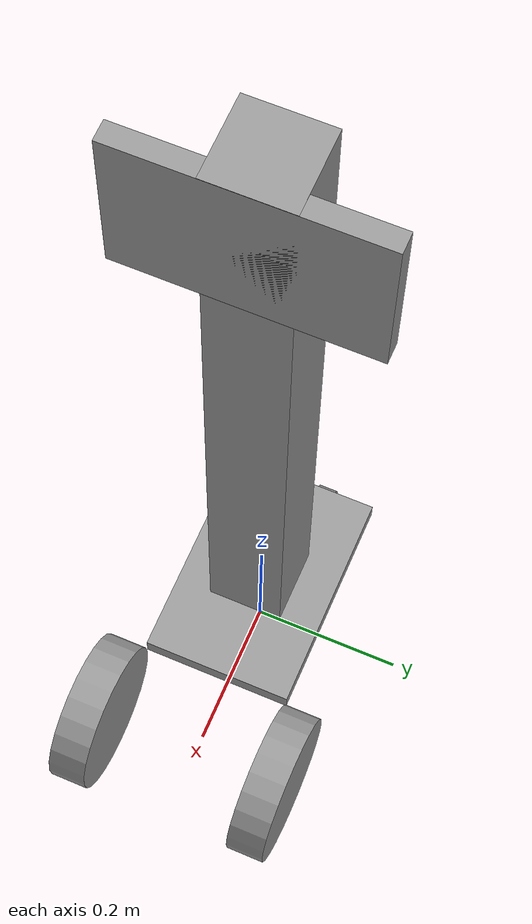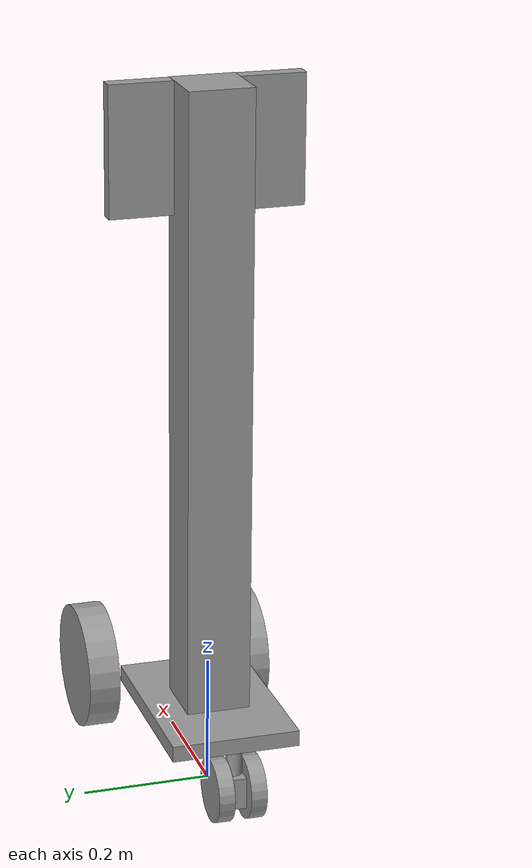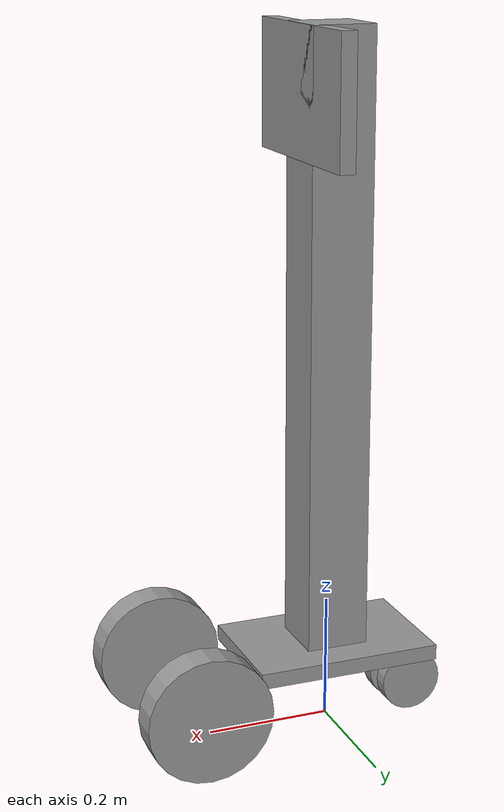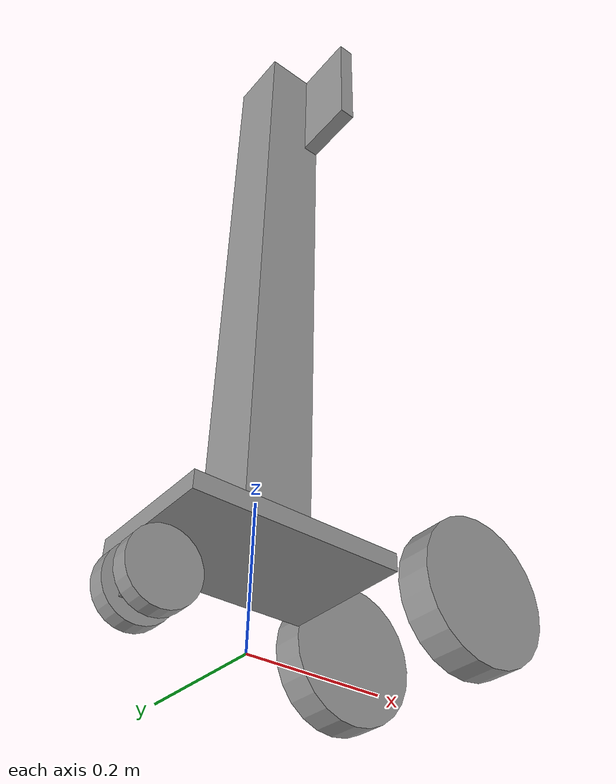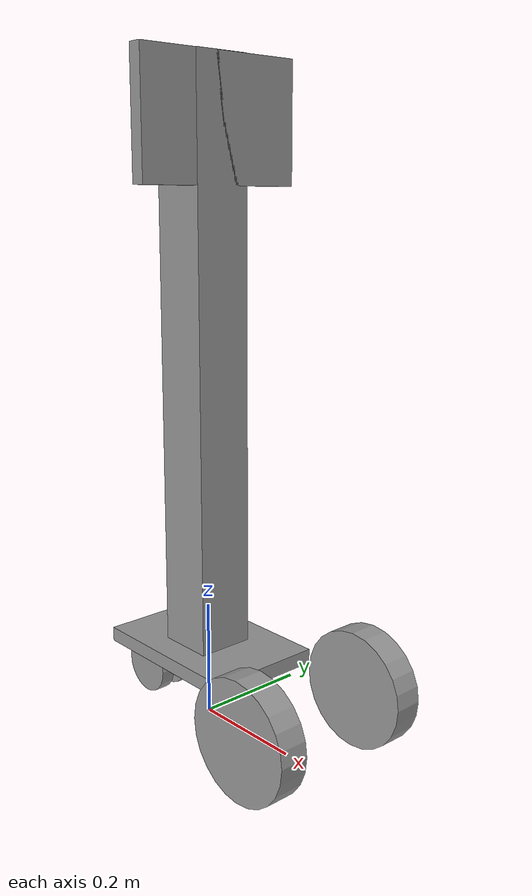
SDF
<?xml version='1.0'?>
<sdf version='1.6'>
  <model name='telepresence'>
    <link name='link_0'>
      <pose frame=''>-0.1375 -0.025344 0.05 1.5708 -0 0</pose>
      <inertial>
        <mass>1</mass>
        <inertia>
          <ixx>0.145833</ixx>
          <ixy>0</ixy>
          <ixz>0</ixz>
          <iyy>0.145833</iyy>
          <iyz>0</iyz>
          <izz>0.125</izz>
        </inertia>
        <pose frame=''>0 0 0 0 -0 0</pose>
      </inertial>
      <self_collide>0</self_collide>
      <kinematic>0</kinematic>
      <visual name='visual'>
        <pose frame=''>0 0 0 0 -0 0</pose>
        <geometry>
          <cylinder>
            <radius>0.05</radius>
            <length>0.025</length>
          </cylinder>
        </geometry>
        <material>
          <lighting>1</lighting>
          <script>
            <uri>file://media/materials/scripts/gazebo.material</uri>
            <name>Gazebo/Grey</name>
          </script>
          <ambient>0.3 0.3 0.3 1</ambient>
          <diffuse>0.7 0.7 0.7 1</diffuse>
          <specular>0.01 0.01 0.01 1</specular>
          <emissive>0 0 0 1</emissive>
          <shader type='vertex'>
            <normal_map>__default__</normal_map>
          </shader>
        </material>
        <cast_shadows>1</cast_shadows>
        <transparency>0</transparency>
      </visual>
      <collision name='collision'>
        <laser_retro>0</laser_retro>
        <max_contacts>10</max_contacts>
        <pose frame=''>0 0 0 0 -0 0</pose>
        <geometry>
          <cylinder>
            <radius>0.05</radius>
            <length>0.025</length>
          </cylinder>
        </geometry>
        <surface>
          <friction>
            <ode>
              <mu>1</mu>
              <mu2>1</mu2>
              <fdir1>0 0 0</fdir1>
              <slip1>0</slip1>
              <slip2>0</slip2>
            </ode>
            <torsional>
              <coefficient>1</coefficient>
              <patch_radius>0</patch_radius>
              <surface_radius>0</surface_radius>
              <use_patch_radius>1</use_patch_radius>
              <ode>
                <slip>0</slip>
              </ode>
            </torsional>
          </friction>
          <bounce>
            <restitution_coefficient>0</restitution_coefficient>
            <threshold>1e+06</threshold>
          </bounce>
          <contact>
            <collide_without_contact>0</collide_without_contact>
            <collide_without_contact_bitmask>1</collide_without_contact_bitmask>
            <collide_bitmask>1</collide_bitmask>
            <ode>
              <soft_cfm>0</soft_cfm>
              <soft_erp>0.2</soft_erp>
              <kp>1e+13</kp>
              <kd>1</kd>
              <max_vel>0.01</max_vel>
              <min_depth>0</min_depth>
            </ode>
            <bullet>
              <split_impulse>1</split_impulse>
              <split_impulse_penetration_threshold>-0.01</split_impulse_penetration_threshold>
              <soft_cfm>0</soft_cfm>
              <soft_erp>0.2</soft_erp>
              <kp>1e+13</kp>
              <kd>1</kd>
            </bullet>
          </contact>
        </surface>
      </collision>
    </link>
    <link name='link_0_0'>
      <pose frame=''>0.0375 -0.004192 1.01271 7e-06 -0 0</pose>
      <inertial>
        <mass>1</mass>
        <inertia>
          <ixx>0.166667</ixx>
          <ixy>0</ixy>
          <ixz>0</ixz>
          <iyy>0.166667</iyy>
          <iyz>0</iyz>
          <izz>0.166667</izz>
        </inertia>
        <pose frame=''>0 0 0 0 -0 0</pose>
      </inertial>
      <self_collide>0</self_collide>
      <kinematic>0</kinematic>
      <visual name='visual'>
        <pose frame=''>0 0 0 0 -0 0</pose>
        <geometry>
          <box>
            <size>0.025 0.3 0.2</size>
          </box>
        </geometry>
        <material>
          <lighting>1</lighting>
          <script>
            <uri>file://media/materials/scripts/gazebo.material</uri>
            <name>Gazebo/Grey</name>
          </script>
          <ambient>0.3 0.3 0.3 1</ambient>
          <diffuse>0.7 0.7 0.7 1</diffuse>
          <specular>0.01 0.01 0.01 1</specular>
          <emissive>0 0 0 1</emissive>
          <shader type='vertex'>
            <normal_map>__default__</normal_map>
          </shader>
        </material>
        <cast_shadows>1</cast_shadows>
        <transparency>0</transparency>
      </visual>
      <collision name='collision'>
        <laser_retro>0</laser_retro>
        <max_contacts>10</max_contacts>
        <pose frame=''>0 0 0 0 -0 0</pose>
        <geometry>
          <box>
            <size>0.025 0.3 0.2</size>
          </box>
        </geometry>
        <surface>
          <friction>
            <ode>
              <mu>1</mu>
              <mu2>1</mu2>
              <fdir1>0 0 0</fdir1>
              <slip1>0</slip1>
              <slip2>0</slip2>
            </ode>
            <torsional>
              <coefficient>1</coefficient>
              <patch_radius>0</patch_radius>
              <surface_radius>0</surface_radius>
              <use_patch_radius>1</use_patch_radius>
              <ode>
                <slip>0</slip>
              </ode>
            </torsional>
          </friction>
          <bounce>
            <restitution_coefficient>0</restitution_coefficient>
            <threshold>1e+06</threshold>
          </bounce>
          <contact>
            <collide_without_contact>0</collide_without_contact>
            <collide_without_contact_bitmask>1</collide_without_contact_bitmask>
            <collide_bitmask>1</collide_bitmask>
            <ode>
              <soft_cfm>0</soft_cfm>
              <soft_erp>0.2</soft_erp>
              <kp>1e+13</kp>
              <kd>1</kd>
              <max_vel>0.01</max_vel>
              <min_depth>0</min_depth>
            </ode>
            <bullet>
              <split_impulse>1</split_impulse>
              <split_impulse_penetration_threshold>-0.01</split_impulse_penetration_threshold>
              <soft_cfm>0</soft_cfm>
              <soft_erp>0.2</soft_erp>
              <kp>1e+13</kp>
              <kd>1</kd>
            </bullet>
          </contact>
        </surface>
      </collision>
    </link>
    <link name='link_0_clone'>
      <pose frame=''>-0.1375 0.025344 0.05 1.5708 -0 0</pose>
      <inertial>
        <mass>1</mass>
        <inertia>
          <ixx>0.145833</ixx>
          <ixy>0</ixy>
          <ixz>0</ixz>
          <iyy>0.145833</iyy>
          <iyz>0</iyz>
          <izz>0.125</izz>
        </inertia>
        <pose frame=''>0 0 0 0 -0 0</pose>
      </inertial>
      <self_collide>0</self_collide>
      <kinematic>0</kinematic>
      <visual name='visual'>
        <pose frame=''>0 0 0 0 -0 0</pose>
        <geometry>
          <cylinder>
            <radius>0.05</radius>
            <length>0.025</length>
          </cylinder>
        </geometry>
        <material>
          <lighting>1</lighting>
          <script>
            <uri>file://media/materials/scripts/gazebo.material</uri>
            <name>Gazebo/Grey</name>
          </script>
          <ambient>0.3 0.3 0.3 1</ambient>
          <diffuse>0.7 0.7 0.7 1</diffuse>
          <specular>0.01 0.01 0.01 1</specular>
          <emissive>0 0 0 1</emissive>
          <shader type='vertex'>
            <normal_map>__default__</normal_map>
          </shader>
        </material>
        <cast_shadows>1</cast_shadows>
        <transparency>0</transparency>
      </visual>
      <collision name='collision'>
        <laser_retro>0</laser_retro>
        <max_contacts>10</max_contacts>
        <pose frame=''>0 0 0 0 -0 0</pose>
        <geometry>
          <cylinder>
            <radius>0.05</radius>
            <length>0.025</length>
          </cylinder>
        </geometry>
        <surface>
          <friction>
            <ode>
              <mu>1</mu>
              <mu2>1</mu2>
              <fdir1>0 0 0</fdir1>
              <slip1>0</slip1>
              <slip2>0</slip2>
            </ode>
            <torsional>
              <coefficient>1</coefficient>
              <patch_radius>0</patch_radius>
              <surface_radius>0</surface_radius>
              <use_patch_radius>1</use_patch_radius>
              <ode>
                <slip>0</slip>
              </ode>
            </torsional>
          </friction>
          <bounce>
            <restitution_coefficient>0</restitution_coefficient>
            <threshold>1e+06</threshold>
          </bounce>
          <contact>
            <collide_without_contact>0</collide_without_contact>
            <collide_without_contact_bitmask>1</collide_without_contact_bitmask>
            <collide_bitmask>1</collide_bitmask>
            <ode>
              <soft_cfm>0</soft_cfm>
              <soft_erp>0.2</soft_erp>
              <kp>1e+13</kp>
              <kd>1</kd>
              <max_vel>0.01</max_vel>
              <min_depth>0</min_depth>
            </ode>
            <bullet>
              <split_impulse>1</split_impulse>
              <split_impulse_penetration_threshold>-0.01</split_impulse_penetration_threshold>
              <soft_cfm>0</soft_cfm>
              <soft_erp>0.2</soft_erp>
              <kp>1e+13</kp>
              <kd>1</kd>
            </bullet>
          </contact>
        </surface>
      </collision>
    </link>
    <link name='link_1'>
      <pose frame=''>-0.1375 0 0.05 0 -0 0</pose>
      <inertial>
        <mass>1</mass>
        <inertia>
          <ixx>0.166667</ixx>
          <ixy>0</ixy>
          <ixz>0</ixz>
          <iyy>0.166667</iyy>
          <iyz>0</iyz>
          <izz>0.166667</izz>
        </inertia>
        <pose frame=''>0 0 0 0 -0 0</pose>
      </inertial>
      <self_collide>0</self_collide>
      <kinematic>0</kinematic>
      <visual name='visual'>
        <pose frame=''>0 0 0 0 -0 0</pose>
        <geometry>
          <box>
            <size>0.05 0.025 0.05</size>
          </box>
        </geometry>
        <material>
          <lighting>1</lighting>
          <script>
            <uri>file://media/materials/scripts/gazebo.material</uri>
            <name>Gazebo/Grey</name>
          </script>
          <ambient>0.3 0.3 0.3 1</ambient>
          <diffuse>0.7 0.7 0.7 1</diffuse>
          <specular>0.01 0.01 0.01 1</specular>
          <emissive>0 0 0 1</emissive>
          <shader type='vertex'>
            <normal_map>__default__</normal_map>
          </shader>
        </material>
        <cast_shadows>1</cast_shadows>
        <transparency>0</transparency>
      </visual>
      <collision name='collision'>
        <laser_retro>0</laser_retro>
        <max_contacts>10</max_contacts>
        <pose frame=''>0 0 0 0 -0 0</pose>
        <geometry>
          <box>
            <size>0.05 0.025 0.05</size>
          </box>
        </geometry>
        <surface>
          <friction>
            <ode>
              <mu>1</mu>
              <mu2>1</mu2>
              <fdir1>0 0 0</fdir1>
              <slip1>0</slip1>
              <slip2>0</slip2>
            </ode>
            <torsional>
              <coefficient>1</coefficient>
              <patch_radius>0</patch_radius>
              <surface_radius>0</surface_radius>
              <use_patch_radius>1</use_patch_radius>
              <ode>
                <slip>0</slip>
              </ode>
            </torsional>
          </friction>
          <bounce>
            <restitution_coefficient>0</restitution_coefficient>
            <threshold>1e+06</threshold>
          </bounce>
          <contact>
            <collide_without_contact>0</collide_without_contact>
            <collide_without_contact_bitmask>1</collide_without_contact_bitmask>
            <collide_bitmask>1</collide_bitmask>
            <ode>
              <soft_cfm>0</soft_cfm>
              <soft_erp>0.2</soft_erp>
              <kp>1e+13</kp>
              <kd>1</kd>
              <max_vel>0.01</max_vel>
              <min_depth>0</min_depth>
            </ode>
            <bullet>
              <split_impulse>1</split_impulse>
              <split_impulse_penetration_threshold>-0.01</split_impulse_penetration_threshold>
              <soft_cfm>0</soft_cfm>
              <soft_erp>0.2</soft_erp>
              <kp>1e+13</kp>
              <kd>1</kd>
            </bullet>
          </contact>
        </surface>
      </collision>
    </link>
    <link name='link_1_0'>
      <pose frame=''>-0 0 0.125 7e-06 -0 0</pose>
      <inertial>
        <mass>1</mass>
        <inertia>
          <ixx>0.166667</ixx>
          <ixy>0</ixy>
          <ixz>0</ixz>
          <iyy>0.166667</iyy>
          <iyz>0</iyz>
          <izz>0.166667</izz>
        </inertia>
        <pose frame=''>0 0 0 0 -0 0</pose>
      </inertial>
      <self_collide>0</self_collide>
      <kinematic>0</kinematic>
      <visual name='visual'>
        <pose frame=''>0 0 0 0 -0 0</pose>
        <geometry>
          <box>
            <size>0.3 0.2 0.025</size>
          </box>
        </geometry>
        <material>
          <lighting>1</lighting>
          <script>
            <uri>file://media/materials/scripts/gazebo.material</uri>
            <name>Gazebo/Grey</name>
          </script>
          <ambient>0.3 0.3 0.3 1</ambient>
          <diffuse>0.7 0.7 0.7 1</diffuse>
          <specular>0.01 0.01 0.01 1</specular>
          <emissive>0 0 0 1</emissive>
          <shader type='vertex'>
            <normal_map>__default__</normal_map>
          </shader>
        </material>
        <cast_shadows>1</cast_shadows>
        <transparency>0</transparency>
      </visual>
      <collision name='collision'>
        <laser_retro>0</laser_retro>
        <max_contacts>10</max_contacts>
        <pose frame=''>0 0 0 0 -0 0</pose>
        <geometry>
          <box>
            <size>0.3 0.2 0.025</size>
          </box>
        </geometry>
        <surface>
          <friction>
            <ode>
              <mu>1</mu>
              <mu2>1</mu2>
              <fdir1>0 0 0</fdir1>
              <slip1>0</slip1>
              <slip2>0</slip2>
            </ode>
            <torsional>
              <coefficient>1</coefficient>
              <patch_radius>0</patch_radius>
              <surface_radius>0</surface_radius>
              <use_patch_radius>1</use_patch_radius>
              <ode>
                <slip>0</slip>
              </ode>
            </torsional>
          </friction>
          <bounce>
            <restitution_coefficient>0</restitution_coefficient>
            <threshold>1e+06</threshold>
          </bounce>
          <contact>
            <collide_without_contact>0</collide_without_contact>
            <collide_without_contact_bitmask>1</collide_without_contact_bitmask>
            <collide_bitmask>1</collide_bitmask>
            <ode>
              <soft_cfm>0</soft_cfm>
              <soft_erp>0.2</soft_erp>
              <kp>1e+13</kp>
              <kd>1</kd>
              <max_vel>0.01</max_vel>
              <min_depth>0</min_depth>
            </ode>
            <bullet>
              <split_impulse>1</split_impulse>
              <split_impulse_penetration_threshold>-0.01</split_impulse_penetration_threshold>
              <soft_cfm>0</soft_cfm>
              <soft_erp>0.2</soft_erp>
              <kp>1e+13</kp>
              <kd>1</kd>
            </bullet>
          </contact>
        </surface>
      </collision>
    </link>
    <link name='link_2'>
      <pose frame=''>-0.1375 0 0.1 0 -0 0</pose>
      <inertial>
        <mass>1</mass>
        <inertia>
          <ixx>0.145833</ixx>
          <ixy>0</ixy>
          <ixz>0</ixz>
          <iyy>0.145833</iyy>
          <iyz>0</iyz>
          <izz>0.125</izz>
        </inertia>
        <pose frame=''>0 0 0 0 -0 0</pose>
      </inertial>
      <self_collide>0</self_collide>
      <kinematic>0</kinematic>
      <visual name='visual'>
        <pose frame=''>0 0 0 0 -0 0</pose>
        <geometry>
          <cylinder>
            <radius>0.0125</radius>
            <length>0.05</length>
          </cylinder>
        </geometry>
        <material>
          <lighting>1</lighting>
          <script>
            <uri>file://media/materials/scripts/gazebo.material</uri>
            <name>Gazebo/Grey</name>
          </script>
          <ambient>0.3 0.3 0.3 1</ambient>
          <diffuse>0.7 0.7 0.7 1</diffuse>
          <specular>0.01 0.01 0.01 1</specular>
          <emissive>0 0 0 1</emissive>
          <shader type='vertex'>
            <normal_map>__default__</normal_map>
          </shader>
        </material>
        <cast_shadows>1</cast_shadows>
        <transparency>0</transparency>
      </visual>
      <collision name='collision'>
        <laser_retro>0</laser_retro>
        <max_contacts>10</max_contacts>
        <pose frame=''>0 0 0 0 -0 0</pose>
        <geometry>
          <cylinder>
            <radius>0.0125</radius>
            <length>0.05</length>
          </cylinder>
        </geometry>
        <surface>
          <friction>
            <ode>
              <mu>1</mu>
              <mu2>1</mu2>
              <fdir1>0 0 0</fdir1>
              <slip1>0</slip1>
              <slip2>0</slip2>
            </ode>
            <torsional>
              <coefficient>1</coefficient>
              <patch_radius>0</patch_radius>
              <surface_radius>0</surface_radius>
              <use_patch_radius>1</use_patch_radius>
              <ode>
                <slip>0</slip>
              </ode>
            </torsional>
          </friction>
          <bounce>
            <restitution_coefficient>0</restitution_coefficient>
            <threshold>1e+06</threshold>
          </bounce>
          <contact>
            <collide_without_contact>0</collide_without_contact>
            <collide_without_contact_bitmask>1</collide_without_contact_bitmask>
            <collide_bitmask>1</collide_bitmask>
            <ode>
              <soft_cfm>0</soft_cfm>
              <soft_erp>0.2</soft_erp>
              <kp>1e+13</kp>
              <kd>1</kd>
              <max_vel>0.01</max_vel>
              <min_depth>0</min_depth>
            </ode>
            <bullet>
              <split_impulse>1</split_impulse>
              <split_impulse_penetration_threshold>-0.01</split_impulse_penetration_threshold>
              <soft_cfm>0</soft_cfm>
              <soft_erp>0.2</soft_erp>
              <kp>1e+13</kp>
              <kd>1</kd>
            </bullet>
          </contact>
        </surface>
      </collision>
    </link>
    <link name='link_2_0'>
      <pose frame=''>-0 -0.002357 0.613177 7e-06 -0 0</pose>
      <inertial>
        <mass>1</mass>
        <inertia>
          <ixx>0.166667</ixx>
          <ixy>0</ixy>
          <ixz>0</ixz>
          <iyy>0.166667</iyy>
          <iyz>0</iyz>
          <izz>0.166667</izz>
        </inertia>
        <pose frame=''>0 0 0 0 -0 0</pose>
      </inertial>
      <self_collide>0</self_collide>
      <kinematic>0</kinematic>
      <visual name='visual'>
        <pose frame=''>0 0 0 0 -0 0</pose>
        <geometry>
          <box>
            <size>0.1 0.1 1</size>
          </box>
        </geometry>
        <material>
          <lighting>1</lighting>
          <script>
            <uri>file://media/materials/scripts/gazebo.material</uri>
            <name>Gazebo/Grey</name>
          </script>
          <ambient>0.3 0.3 0.3 1</ambient>
          <diffuse>0.7 0.7 0.7 1</diffuse>
          <specular>0.01 0.01 0.01 1</specular>
          <emissive>0 0 0 1</emissive>
          <shader type='vertex'>
            <normal_map>__default__</normal_map>
          </shader>
        </material>
        <cast_shadows>1</cast_shadows>
        <transparency>0</transparency>
      </visual>
      <collision name='collision'>
        <laser_retro>0</laser_retro>
        <max_contacts>10</max_contacts>
        <pose frame=''>0 0 0 0 -0 0</pose>
        <geometry>
          <box>
            <size>0.1 0.1 1</size>
          </box>
        </geometry>
        <surface>
          <friction>
            <ode>
              <mu>1</mu>
              <mu2>1</mu2>
              <fdir1>0 0 0</fdir1>
              <slip1>0</slip1>
              <slip2>0</slip2>
            </ode>
            <torsional>
              <coefficient>1</coefficient>
              <patch_radius>0</patch_radius>
              <surface_radius>0</surface_radius>
              <use_patch_radius>1</use_patch_radius>
              <ode>
                <slip>0</slip>
              </ode>
            </torsional>
          </friction>
          <bounce>
            <restitution_coefficient>0</restitution_coefficient>
            <threshold>1e+06</threshold>
          </bounce>
          <contact>
            <collide_without_contact>0</collide_without_contact>
            <collide_without_contact_bitmask>1</collide_without_contact_bitmask>
            <collide_bitmask>1</collide_bitmask>
            <ode>
              <soft_cfm>0</soft_cfm>
              <soft_erp>0.2</soft_erp>
              <kp>1e+13</kp>
              <kd>1</kd>
              <max_vel>0.01</max_vel>
              <min_depth>0</min_depth>
            </ode>
            <bullet>
              <split_impulse>1</split_impulse>
              <split_impulse_penetration_threshold>-0.01</split_impulse_penetration_threshold>
              <soft_cfm>0</soft_cfm>
              <soft_erp>0.2</soft_erp>
              <kp>1e+13</kp>
              <kd>1</kd>
            </bullet>
          </contact>
        </surface>
      </collision>
    </link>
    <link name='link_3'>
      <pose frame=''>0.25 -0.125523 0.1 7e-06 -0 0</pose>
      <inertial>
        <mass>1</mass>
        <inertia>
          <ixx>0.145833</ixx>
          <ixy>0</ixy>
          <ixz>0</ixz>
          <iyy>0.145833</iyy>
          <iyz>0</iyz>
          <izz>0.125</izz>
        </inertia>
        <pose frame=''>0 0 0 0 -0 0</pose>
      </inertial>
      <self_collide>0</self_collide>
      <kinematic>0</kinematic>
      <gravity>1</gravity>
      <visual name='visual'>
        <pose frame=''>0 0 0 1.5707 -0 0</pose>
        <geometry>
          <cylinder>
            <radius>0.1</radius>
            <length>0.05</length>
          </cylinder>
        </geometry>
        <material>
          <lighting>1</lighting>
          <script>
            <uri>file://media/materials/scripts/gazebo.material</uri>
            <name>Gazebo/Grey</name>
          </script>
          <ambient>0.3 0.3 0.3 1</ambient>
          <diffuse>0.7 0.7 0.7 1</diffuse>
          <specular>0.01 0.01 0.01 1</specular>
          <emissive>0 0 0 1</emissive>
          <shader type='vertex'>
            <normal_map>__default__</normal_map>
          </shader>
        </material>
        <cast_shadows>1</cast_shadows>
        <transparency>0</transparency>
      </visual>
      <collision name='collision'>
        <laser_retro>0</laser_retro>
        <max_contacts>10</max_contacts>
        <pose frame=''>0 0 0 1.5708 -0 0</pose>
        <geometry>
          <cylinder>
            <radius>0.1</radius>
            <length>0.05</length>
          </cylinder>
        </geometry>
        <surface>
          <friction>
            <ode>
              <mu>1</mu>
              <mu2>1</mu2>
              <fdir1>0 0 0</fdir1>
              <slip1>0</slip1>
              <slip2>0</slip2>
            </ode>
            <torsional>
              <coefficient>1</coefficient>
              <patch_radius>0</patch_radius>
              <surface_radius>0</surface_radius>
              <use_patch_radius>1</use_patch_radius>
              <ode>
                <slip>0</slip>
              </ode>
            </torsional>
          </friction>
          <bounce>
            <restitution_coefficient>0</restitution_coefficient>
            <threshold>1e+06</threshold>
          </bounce>
          <contact>
            <collide_without_contact>0</collide_without_contact>
            <collide_without_contact_bitmask>1</collide_without_contact_bitmask>
            <collide_bitmask>1</collide_bitmask>
            <ode>
              <soft_cfm>0</soft_cfm>
              <soft_erp>0.2</soft_erp>
              <kp>1e+13</kp>
              <kd>1</kd>
              <max_vel>0.01</max_vel>
              <min_depth>0</min_depth>
            </ode>
            <bullet>
              <split_impulse>1</split_impulse>
              <split_impulse_penetration_threshold>-0.01</split_impulse_penetration_threshold>
              <soft_cfm>0</soft_cfm>
              <soft_erp>0.2</soft_erp>
              <kp>1e+13</kp>
              <kd>1</kd>
            </bullet>
          </contact>
        </surface>
      </collision>
    </link>
    <link name='link_3_clone'>
      <pose frame=''>0.25 0.125522 0.1 1.4e-05 -0 0</pose>
      <inertial>
        <mass>1</mass>
        <inertia>
          <ixx>0.145833</ixx>
          <ixy>0</ixy>
          <ixz>0</ixz>
          <iyy>0.145833</iyy>
          <iyz>0</iyz>
          <izz>0.125</izz>
        </inertia>
        <pose frame=''>0 0 0 0 -0 0</pose>
      </inertial>
      <self_collide>0</self_collide>
      <kinematic>0</kinematic>
      <gravity>1</gravity>
      <visual name='visual'>
        <pose frame=''>0 0 0 1.5707 -0 0</pose>
        <geometry>
          <cylinder>
            <radius>0.1</radius>
            <length>0.05</length>
          </cylinder>
        </geometry>
        <material>
          <lighting>1</lighting>
          <script>
            <uri>file://media/materials/scripts/gazebo.material</uri>
            <name>Gazebo/Grey</name>
          </script>
          <ambient>0.3 0.3 0.3 1</ambient>
          <diffuse>0.7 0.7 0.7 1</diffuse>
          <specular>0.01 0.01 0.01 1</specular>
          <emissive>0 0 0 1</emissive>
          <shader type='vertex'>
            <normal_map>__default__</normal_map>
          </shader>
        </material>
        <cast_shadows>1</cast_shadows>
        <transparency>0</transparency>
      </visual>
      <collision name='collision'>
        <laser_retro>0</laser_retro>
        <max_contacts>10</max_contacts>
        <pose frame=''>0 0 0 1.5708 -0 0</pose>
        <geometry>
          <cylinder>
            <radius>0.1</radius>
            <length>0.05</length>
          </cylinder>
        </geometry>
        <surface>
          <friction>
            <ode>
              <mu>1</mu>
              <mu2>1</mu2>
              <fdir1>0 0 0</fdir1>
              <slip1>0</slip1>
              <slip2>0</slip2>
            </ode>
            <torsional>
              <coefficient>1</coefficient>
              <patch_radius>0</patch_radius>
              <surface_radius>0</surface_radius>
              <use_patch_radius>1</use_patch_radius>
              <ode>
                <slip>0</slip>
              </ode>
            </torsional>
          </friction>
          <bounce>
            <restitution_coefficient>0</restitution_coefficient>
            <threshold>1e+06</threshold>
          </bounce>
          <contact>
            <collide_without_contact>0</collide_without_contact>
            <collide_without_contact_bitmask>1</collide_without_contact_bitmask>
            <collide_bitmask>1</collide_bitmask>
            <ode>
              <soft_cfm>0</soft_cfm>
              <soft_erp>0.2</soft_erp>
              <kp>1e+13</kp>
              <kd>1</kd>
              <max_vel>0.01</max_vel>
              <min_depth>0</min_depth>
            </ode>
            <bullet>
              <split_impulse>1</split_impulse>
              <split_impulse_penetration_threshold>-0.01</split_impulse_penetration_threshold>
              <soft_cfm>0</soft_cfm>
              <soft_erp>0.2</soft_erp>
              <kp>1e+13</kp>
              <kd>1</kd>
            </bullet>
          </contact>
        </surface>
      </collision>
    </link>
    <joint name='link_1_0_JOINT_0' type='revolute'>
      <parent>link_1_0</parent>
      <child>link_2</child>
      <pose frame=''>0 0 0 0 -0 0</pose>
      <axis>
        <xyz>0 0 1</xyz>
        <use_parent_model_frame>0</use_parent_model_frame>
        <limit>
          <lower>-1.79769e+308</lower>
          <upper>1.79769e+308</upper>
          <effort>-1</effort>
          <velocity>-1</velocity>
        </limit>
        <dynamics>
          <spring_reference>0</spring_reference>
          <spring_stiffness>0</spring_stiffness>
          <damping>0</damping>
          <friction>0</friction>
        </dynamics>
      </axis>
      <physics>
        <ode>
          <limit>
            <cfm>0</cfm>
            <erp>0.2</erp>
          </limit>
          <suspension>
            <cfm>0</cfm>
            <erp>0.2</erp>
          </suspension>
        </ode>
      </physics>
    </joint>
    <joint name='link_1_0_JOINT_2' type='revolute'>
      <parent>link_1_0</parent>
      <child>link_3</child>
      <pose frame=''>0 0 0 0 -0 0</pose>
      <axis>
        <xyz>0 1 0</xyz>
        <use_parent_model_frame>0</use_parent_model_frame>
        <limit>
          <lower>-1.79769e+308</lower>
          <upper>1.79769e+308</upper>
          <effort>-1</effort>
          <velocity>-1</velocity>
        </limit>
        <dynamics>
          <spring_reference>0</spring_reference>
          <spring_stiffness>0</spring_stiffness>
          <damping>0</damping>
          <friction>0</friction>
        </dynamics>
      </axis>
      <physics>
        <ode>
          <limit>
            <cfm>0</cfm>
            <erp>0.2</erp>
          </limit>
          <suspension>
            <cfm>0</cfm>
            <erp>0.2</erp>
          </suspension>
        </ode>
      </physics>
    </joint>
    <joint name='link_1_0_JOINT_3' type='revolute'>
      <parent>link_1_0</parent>
      <child>link_3_clone</child>
      <pose frame=''>0 0 0 0 -0 0</pose>
      <axis>
        <xyz>0 1 0</xyz>
        <use_parent_model_frame>0</use_parent_model_frame>
        <limit>
          <lower>-1.79769e+308</lower>
          <upper>1.79769e+308</upper>
          <effort>-1</effort>
          <velocity>-1</velocity>
        </limit>
        <dynamics>
          <spring_reference>0</spring_reference>
          <spring_stiffness>0</spring_stiffness>
          <damping>0</damping>
          <friction>0</friction>
        </dynamics>
      </axis>
      <physics>
        <ode>
          <limit>
            <cfm>0</cfm>
            <erp>0.2</erp>
          </limit>
          <suspension>
            <cfm>0</cfm>
            <erp>0.2</erp>
          </suspension>
        </ode>
      </physics>
    </joint>
    <joint name='link_1_0_JOINT_6' type='fixed'>
      <parent>link_1_0</parent>
      <child>link_2_0</child>
      <pose frame=''>0 0 0 0 -0 0</pose>
      <physics>
        <ode>
          <limit>
            <cfm>0</cfm>
            <erp>0.2</erp>
          </limit>
          <suspension>
            <cfm>0</cfm>
            <erp>0.2</erp>
          </suspension>
        </ode>
      </physics>
    </joint>
    <joint name='link_1_JOINT_0' type='revolute'>
      <parent>link_1</parent>
      <child>link_0</child>
      <pose frame=''>0 0 0 0 -0 0</pose>
      <axis>
        <xyz>0 0 1</xyz>
        <use_parent_model_frame>0</use_parent_model_frame>
        <limit>
          <lower>-1.79769e+308</lower>
          <upper>1.79769e+308</upper>
          <effort>-1</effort>
          <velocity>-1</velocity>
        </limit>
        <dynamics>
          <spring_reference>0</spring_reference>
          <spring_stiffness>0</spring_stiffness>
          <damping>0</damping>
          <friction>0</friction>
        </dynamics>
      </axis>
      <physics>
        <ode>
          <limit>
            <cfm>0</cfm>
            <erp>0.2</erp>
          </limit>
          <suspension>
            <cfm>0</cfm>
            <erp>0.2</erp>
          </suspension>
        </ode>
      </physics>
    </joint>
    <joint name='link_1_JOINT_1' type='revolute'>
      <parent>link_1</parent>
      <child>link_0_clone</child>
      <pose frame=''>0 0 0 0 -0 0</pose>
      <axis>
        <xyz>0 0 1</xyz>
        <use_parent_model_frame>0</use_parent_model_frame>
        <limit>
          <lower>-1.79769e+308</lower>
          <upper>1.79769e+308</upper>
          <effort>-1</effort>
          <velocity>-1</velocity>
        </limit>
        <dynamics>
          <spring_reference>0</spring_reference>
          <spring_stiffness>0</spring_stiffness>
          <damping>0</damping>
          <friction>0</friction>
        </dynamics>
      </axis>
      <physics>
        <ode>
          <limit>
            <cfm>0</cfm>
            <erp>0.2</erp>
          </limit>
          <suspension>
            <cfm>0</cfm>
            <erp>0.2</erp>
          </suspension>
        </ode>
      </physics>
    </joint>
    <joint name='link_2_0_JOINT_7' type='fixed'>
      <parent>link_2_0</parent>
      <child>link_0_0</child>
      <pose frame=''>0 0 0 0 -0 0</pose>
      <physics>
        <ode>
          <limit>
            <cfm>0</cfm>
            <erp>0.2</erp>
          </limit>
          <suspension>
            <cfm>0</cfm>
            <erp>0.2</erp>
          </suspension>
        </ode>
      </physics>
    </joint>
    <joint name='link_2_JOINT_1' type='fixed'>
      <parent>link_2</parent>
      <child>link_1</child>
      <pose frame=''>0 0 0 0 -0 0</pose>
      <physics>
        <ode>
          <limit>
            <cfm>0</cfm>
            <erp>0.2</erp>
          </limit>
          <suspension>
            <cfm>0</cfm>
            <erp>0.2</erp>
          </suspension>
        </ode>
      </physics>
    </joint>
    <static>0</static>
    <allow_auto_disable>1</allow_auto_disable>
  </model>
</sdf>
